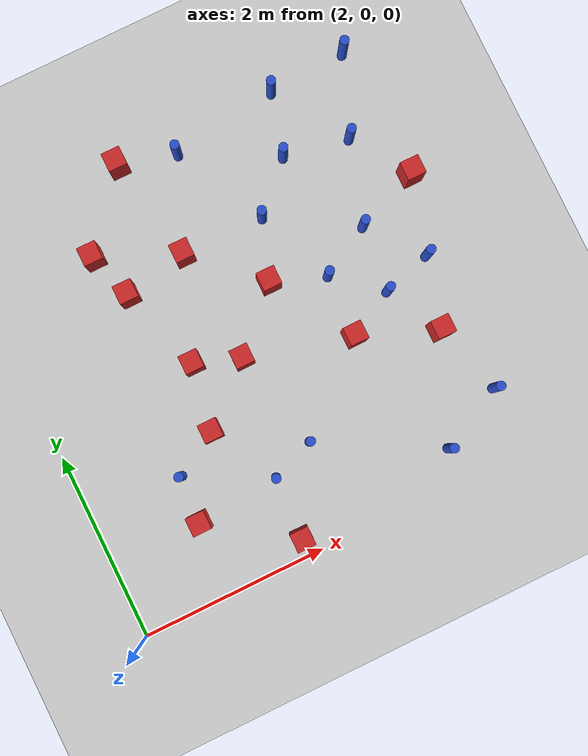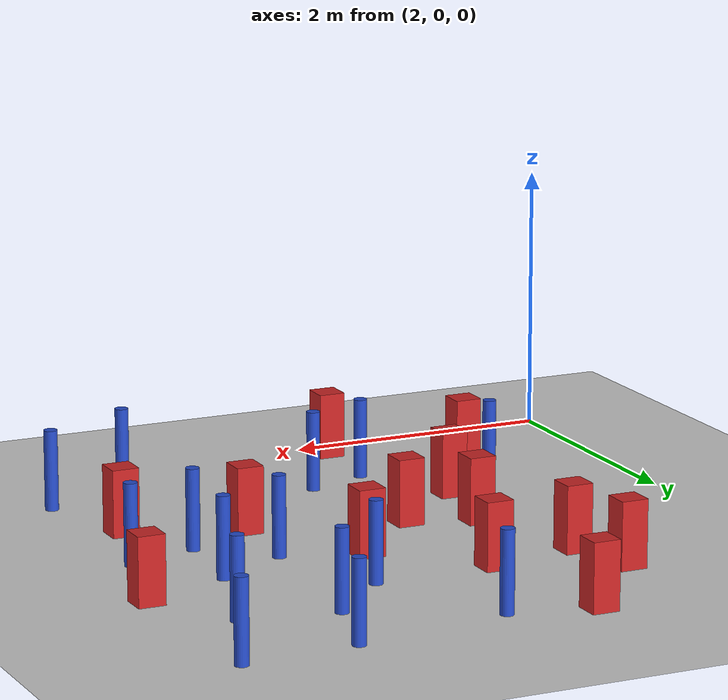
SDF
<sdf version="1.6">
 <world name="default">
  <model name="ground_plane">
   <static>1</static>
   <link name="link">
    <collision name="collision">
     <geometry><plane><normal>0 0 1</normal><size>100 100</size></plane></geometry>
     <surface><friction><ode><mu>100</mu><mu2>50</mu2></ode></friction></surface>
    </collision>
    <visual name="visual">
     <cast_shadows>0</cast_shadows>
     <geometry><plane><normal>0 0 1</normal><size>100 100</size></plane></geometry>
     <material>
      <ambient>1.0 1.0 1.0 1.0</ambient>
      <diffuse>0.8 0.8 0.8 1.0</diffuse>
      <specular>0.01 0.01 0.01 1.000000</specular>
     </material>
    </visual>
   </link>
  </model>
  <model name="square_post_obstacle15">
   <static>true</static>
   <pose>5.23388561417 1.81735451772 1.91545236811e-07 -7.35059704564e-06 1.12565212e-07 2.39332434364e-05</pose>
   <link name="link">
    <pose>0 0 0.25 0 -0 0</pose>
    <inertial>
     <mass>100</mass>
     <inertia>
      <ixx>0.166667</ixx>
      <ixy>0</ixy>
      <ixz>0</ixz>
      <iyy>0.166667</iyy>
      <iyz>0</iyz>
      <izz>0.166667</izz>
     </inertia>
    </inertial>
    <collision name="collision"><geometry><box><size>.2 .2 .5</size></box></geometry></collision>
    <visual name="visual">
     <geometry><box><size>.2 .2 .5</size></box></geometry>
     <material>
      <script><name>Gazebo/Red</name><uri>file://media/materials/scripts/gazebo.material</uri></script>
     </material>
    </visual>
   </link>
  </model>
  <model name="square_post_obstacle16">
   <static>true</static>
   <pose>3.6259601431 2.28239656154 1.91545236811e-07 -7.35059704564e-06 1.12565212e-07 2.39332434364e-05</pose>
   <link name="link">
    <pose>0 0 0.25 0 -0 0</pose>
    <inertial>
     <mass>100</mass>
     <inertia>
      <ixx>0.166667</ixx>
      <ixy>0</ixy>
      <ixz>0</ixz>
      <iyy>0.166667</iyy>
      <iyz>0</iyz>
      <izz>0.166667</izz>
     </inertia>
    </inertial>
    <collision name="collision"><geometry><box><size>.2 .2 .5</size></box></geometry></collision>
    <visual name="visual">
     <geometry><box><size>.2 .2 .5</size></box></geometry>
     <material>
      <script><name>Gazebo/Red</name><uri>file://media/materials/scripts/gazebo.material</uri></script>
     </material>
    </visual>
   </link>
  </model>
  <model name="square_post_obstacle24">
   <static>true</static>
   <pose>3.81590200415 4.46829043997 1.91545236811e-07 -7.35059704564e-06 1.12565212e-07 2.39332434364e-05</pose>
   <link name="link">
    <pose>0 0 0.25 0 -0 0</pose>
    <inertial>
     <mass>100</mass>
     <inertia>
      <ixx>0.166667</ixx>
      <ixy>0</ixy>
      <ixz>0</ixz>
      <iyy>0.166667</iyy>
      <iyz>0</iyz>
      <izz>0.166667</izz>
     </inertia>
    </inertial>
    <collision name="collision"><geometry><box><size>.2 .2 .5</size></box></geometry></collision>
    <visual name="visual">
     <geometry><box><size>.2 .2 .5</size></box></geometry>
     <material>
      <script><name>Gazebo/Red</name><uri>file://media/materials/scripts/gazebo.material</uri></script>
     </material>
    </visual>
   </link>
  </model>
  <model name="pole_obstacle20">
   <static>true</static>
   <pose>6.43205474753 4.52265151657 7.38925637345e-09 -8.47170692796e-08 1.24976764786e-08 -1.74513093032e-07</pose>
   <link name="link">
    <pose>0 0 0.3 0 -0 0</pose>
    <inertial>
     <mass>1</mass>
     <inertia><ixx>0.145833</ixx><ixy>0</ixy><ixz>0</ixz><iyy>0.145833</iyy><iyz>0</iyz><izz>0.125</izz></inertia>
    </inertial>
    <collision name="collision">
     <geometry><cylinder><radius>0.05</radius><length>.6</length></cylinder></geometry>
    </collision>
    <visual name="visual">
     <geometry><cylinder><radius>0.05</radius><length>.6</length></cylinder></geometry>
     <material>
      <script><name>Gazebo/Blue</name><uri>file://media/materials/scripts/gazebo.material</uri></script>
     </material>
    </visual>
   </link>
  </model>
  <model name="pole_obstacle28">
   <static>true</static>
   <pose>5.59675681962 0.361284577051 7.38925637345e-09 -8.47170692798e-08 1.24976765003e-08 -1.7451309302e-07</pose>
   <link name="link">
    <pose>0 0 0.3 0 -0 0</pose>
    <inertial>
     <mass>1</mass>
     <inertia><ixx>0.145833</ixx><ixy>0</ixy><ixz>0</ixz><iyy>0.145833</iyy><iyz>0</iyz><izz>0.125</izz></inertia>
    </inertial>
    <collision name="collision">
     <geometry><cylinder><radius>0.05</radius><length>.6</length></cylinder></geometry>
    </collision>
    <visual name="visual">
     <geometry><cylinder><radius>0.05</radius><length>.6</length></cylinder></geometry>
     <material>
      <script><name>Gazebo/Blue</name><uri>file://media/materials/scripts/gazebo.material</uri></script>
     </material>
    </visual>
   </link>
  </model>
  <model name="square_post_obstacle41">
   <static>true</static>
   <pose>3.18091026252 3.70821379578 1.91545236811e-07 -7.35059704564e-06 1.12565212e-07 2.39332434364e-05</pose>
   <link name="link">
    <pose>0 0 0.25 0 -0 0</pose>
    <inertial>
     <mass>100</mass>
     <inertia>
      <ixx>0.166667</ixx>
      <ixy>0</ixy>
      <ixz>0</ixz>
      <iyy>0.166667</iyy>
      <iyz>0</iyz>
      <izz>0.166667</izz>
     </inertia>
    </inertial>
    <collision name="collision"><geometry><box><size>.2 .2 .5</size></box></geometry></collision>
    <visual name="visual">
     <geometry><box><size>.2 .2 .5</size></box></geometry>
     <material>
      <script><name>Gazebo/Red</name><uri>file://media/materials/scripts/gazebo.material</uri></script>
     </material>
    </visual>
   </link>
  </model>
  <model name="square_post_obstacle54">
   <static>true</static>
   <pose>4.02570083904 3.33463986066 1.91545236811e-07 -7.35059704564e-06 1.12565212e-07 2.39332434364e-05</pose>
   <link name="link">
    <pose>0 0 0.25 0 -0 0</pose>
    <inertial>
     <mass>100</mass>
     <inertia>
      <ixx>0.166667</ixx>
      <ixy>0</ixy>
      <ixz>0</ixz>
      <iyy>0.166667</iyy>
      <iyz>0</iyz>
      <izz>0.166667</izz>
     </inertia>
    </inertial>
    <collision name="collision"><geometry><box><size>.2 .2 .5</size></box></geometry></collision>
    <visual name="visual">
     <geometry><box><size>.2 .2 .5</size></box></geometry>
     <material>
      <script><name>Gazebo/Red</name><uri>file://media/materials/scripts/gazebo.material</uri></script>
     </material>
    </visual>
   </link>
  </model>
  <model name="square_post_obstacle67">
   <static>true</static>
   <pose>3.49952162425 1.57807710977 1.91545236811e-07 -7.35059704564e-06 1.12565212e-07 2.39332434364e-05</pose>
   <link name="link">
    <pose>0 0 0.25 0 -0 0</pose>
    <inertial>
     <mass>100</mass>
     <inertia>
      <ixx>0.166667</ixx>
      <ixy>0</ixy>
      <ixz>0</ixz>
      <iyy>0.166667</iyy>
      <iyz>0</iyz>
      <izz>0.166667</izz>
     </inertia>
    </inertial>
    <collision name="collision"><geometry><box><size>.2 .2 .5</size></box></geometry></collision>
    <visual name="visual">
     <geometry><box><size>.2 .2 .5</size></box></geometry>
     <material>
      <script><name>Gazebo/Red</name><uri>file://media/materials/scripts/gazebo.material</uri></script>
     </material>
    </visual>
   </link>
  </model>
  <model name="pole_obstacle68">
   <static>true</static>
   <pose>5.26768829047 2.48680437826 7.38925637345e-09 -8.47170692798e-08 1.24976764937e-08 -1.74513093023e-07</pose>
   <link name="link">
    <pose>0 0 0.3 0 -0 0</pose>
    <inertial>
     <mass>1</mass>
     <inertia><ixx>0.145833</ixx><ixy>0</ixy><ixz>0</ixz><iyy>0.145833</iyy><iyz>0</iyz><izz>0.125</izz></inertia>
    </inertial>
    <collision name="collision">
     <geometry><cylinder><radius>0.05</radius><length>.6</length></cylinder></geometry>
    </collision>
    <visual name="visual">
     <geometry><cylinder><radius>0.05</radius><length>.6</length></cylinder></geometry>
     <material>
      <script><name>Gazebo/Blue</name><uri>file://media/materials/scripts/gazebo.material</uri></script>
     </material>
    </visual>
   </link>
  </model>
  <model name="pole_obstacle71">
   <static>true</static>
   <pose>4.3512231206 1.04355273768 7.38925637345e-09 -8.47170692801e-08 1.24976765139e-08 -1.74513093014e-07</pose>
   <link name="link">
    <pose>0 0 0.3 0 -0 0</pose>
    <inertial>
     <mass>1</mass>
     <inertia><ixx>0.145833</ixx><ixy>0</ixy><ixz>0</ixz><iyy>0.145833</iyy><iyz>0</iyz><izz>0.125</izz></inertia>
    </inertial>
    <collision name="collision">
     <geometry><cylinder><radius>0.05</radius><length>.6</length></cylinder></geometry>
    </collision>
    <visual name="visual">
     <geometry><cylinder><radius>0.05</radius><length>.6</length></cylinder></geometry>
     <material>
      <script><name>Gazebo/Blue</name><uri>file://media/materials/scripts/gazebo.material</uri></script>
     </material>
    </visual>
   </link>
  </model>
  <model name="pole_obstacle75">
   <static>true</static>
   <pose>3.02442306669 1.29899592093 7.38925637345e-09 -8.471706928e-08 1.24976765152e-08 -1.74513093012e-07</pose>
   <link name="link">
    <pose>0 0 0.3 0 -0 0</pose>
    <inertial>
     <mass>1</mass>
     <inertia><ixx>0.145833</ixx><ixy>0</ixy><ixz>0</ixz><iyy>0.145833</iyy><iyz>0</iyz><izz>0.125</izz></inertia>
    </inertial>
    <collision name="collision">
     <geometry><cylinder><radius>0.05</radius><length>.6</length></cylinder></geometry>
    </collision>
    <visual name="visual">
     <geometry><cylinder><radius>0.05</radius><length>.6</length></cylinder></geometry>
     <material>
      <script><name>Gazebo/Blue</name><uri>file://media/materials/scripts/gazebo.material</uri></script>
     </material>
    </visual>
   </link>
  </model>
  <model name="pole_obstacle77">
   <static>true</static>
   <pose>4.4259155013 4.30985331413 7.38925637345e-09 -8.47170692796e-08 1.24976764786e-08 -1.74513093032e-07</pose>
   <link name="link">
    <pose>0 0 0.3 0 -0 0</pose>
    <inertial>
     <mass>1</mass>
     <inertia><ixx>0.145833</ixx><ixy>0</ixy><ixz>0</ixz><iyy>0.145833</iyy><iyz>0</iyz><izz>0.125</izz></inertia>
    </inertial>
    <collision name="collision">
     <geometry><cylinder><radius>0.05</radius><length>.6</length></cylinder></geometry>
    </collision>
    <visual name="visual">
     <geometry><cylinder><radius>0.05</radius><length>.6</length></cylinder></geometry>
     <material>
      <script><name>Gazebo/Blue</name><uri>file://media/materials/scripts/gazebo.material</uri></script>
     </material>
    </visual>
   </link>
  </model>
  <model name="pole_obstacle86">
   <static>true</static>
   <pose>6.28628153784 0.711278214851 7.38925637345e-09 -8.47170692799e-08 1.24976765038e-08 -1.74513093018e-07</pose>
   <link name="link">
    <pose>0 0 0.3 0 -0 0</pose>
    <inertial>
     <mass>1</mass>
     <inertia><ixx>0.145833</ixx><ixy>0</ixy><ixz>0</ixz><iyy>0.145833</iyy><iyz>0</iyz><izz>0.125</izz></inertia>
    </inertial>
    <collision name="collision">
     <geometry><cylinder><radius>0.05</radius><length>.6</length></cylinder></geometry>
    </collision>
    <visual name="visual">
     <geometry><cylinder><radius>0.05</radius><length>.6</length></cylinder></geometry>
     <material>
      <script><name>Gazebo/Blue</name><uri>file://media/materials/scripts/gazebo.material</uri></script>
     </material>
    </visual>
   </link>
  </model>
  <model name="square_post_obstacle88">
   <static>true</static>
   <pose>4.69300671178 2.69430356194 1.91545236811e-07 -7.35059704564e-06 1.12565212e-07 2.39332434364e-05</pose>
   <link name="link">
    <pose>0 0 0.25 0 -0 0</pose>
    <inertial>
     <mass>100</mass>
     <inertia>
      <ixx>0.166667</ixx>
      <ixy>0</ixy>
      <ixz>0</ixz>
      <iyy>0.166667</iyy>
      <iyz>0</iyz>
      <izz>0.166667</izz>
     </inertia>
    </inertial>
    <collision name="collision"><geometry><box><size>.2 .2 .5</size></box></geometry></collision>
    <visual name="visual">
     <geometry><box><size>.2 .2 .5</size></box></geometry>
     <material>
      <script><name>Gazebo/Red</name><uri>file://media/materials/scripts/gazebo.material</uri></script>
     </material>
    </visual>
   </link>
  </model>
  <model name="square_post_obstacle98">
   <static>true</static>
   <pose>2.99286861903 0.799404648169 1.91545236811e-07 -7.35059704564e-06 1.12565212e-07 2.39332434364e-05</pose>
   <link name="link">
    <pose>0 0 0.25 0 -0 0</pose>
    <inertial>
     <mass>100</mass>
     <inertia>
      <ixx>0.166667</ixx>
      <ixy>0</ixy>
      <ixz>0</ixz>
      <iyy>0.166667</iyy>
      <iyz>0</iyz>
      <izz>0.166667</izz>
     </inertia>
    </inertial>
    <collision name="collision"><geometry><box><size>.2 .2 .5</size></box></geometry></collision>
    <visual name="visual">
     <geometry><box><size>.2 .2 .5</size></box></geometry>
     <material>
      <script><name>Gazebo/Red</name><uri>file://media/materials/scripts/gazebo.material</uri></script>
     </material>
    </visual>
   </link>
  </model>
  <model name="pole_obstacle113">
   <static>true</static>
   <pose>4.92219928807 3.32930231046 7.38925637345e-09 -8.47170692798e-08 1.24976764937e-08 -1.74513093023e-07</pose>
   <link name="link">
    <pose>0 0 0.3 0 -0 0</pose>
    <inertial>
     <mass>1</mass>
     <inertia><ixx>0.145833</ixx><ixy>0</ixy><ixz>0</ixz><iyy>0.145833</iyy><iyz>0</iyz><izz>0.125</izz></inertia>
    </inertial>
    <collision name="collision">
     <geometry><cylinder><radius>0.05</radius><length>.6</length></cylinder></geometry>
    </collision>
    <visual name="visual">
     <geometry><cylinder><radius>0.05</radius><length>.6</length></cylinder></geometry>
     <material>
      <script><name>Gazebo/Blue</name><uri>file://media/materials/scripts/gazebo.material</uri></script>
     </material>
    </visual>
   </link>
  </model>
  <model name="pole_obstacle124">
   <static>true</static>
   <pose>5.81735203296 2.79168746584 7.38925637345e-09 -8.47170692798e-08 1.24976764937e-08 -1.74513093023e-07</pose>
   <link name="link">
    <pose>0 0 0.3 0 -0 0</pose>
    <inertial>
     <mass>1</mass>
     <inertia><ixx>0.145833</ixx><ixy>0</ixy><ixz>0</ixz><iyy>0.145833</iyy><iyz>0</iyz><izz>0.125</izz></inertia>
    </inertial>
    <collision name="collision">
     <geometry><cylinder><radius>0.05</radius><length>.6</length></cylinder></geometry>
    </collision>
    <visual name="visual">
     <geometry><cylinder><radius>0.05</radius><length>.6</length></cylinder></geometry>
     <material>
      <script><name>Gazebo/Blue</name><uri>file://media/materials/scripts/gazebo.material</uri></script>
     </material>
    </visual>
   </link>
  </model>
  <model name="pole_obstacle138">
   <static>true</static>
   <pose>5.74533794981 2.07780654135 7.38925637345e-09 -8.47170692798e-08 1.24976764937e-08 -1.74513093023e-07</pose>
   <link name="link">
    <pose>0 0 0.3 0 -0 0</pose>
    <inertial>
     <mass>1</mass>
     <inertia><ixx>0.145833</ixx><ixy>0</ixy><ixz>0</ixz><iyy>0.145833</iyy><iyz>0</iyz><izz>0.125</izz></inertia>
    </inertial>
    <collision name="collision">
     <geometry><cylinder><radius>0.05</radius><length>.6</length></cylinder></geometry>
    </collision>
    <visual name="visual">
     <geometry><cylinder><radius>0.05</radius><length>.6</length></cylinder></geometry>
     <material>
      <script><name>Gazebo/Blue</name><uri>file://media/materials/scripts/gazebo.material</uri></script>
     </material>
    </visual>
   </link>
  </model>
  <model name="square_post_obstacle131">
   <static>true</static>
   <pose>3.85552608297 0.204361449174 1.91545236811e-07 -7.35059704564e-06 1.12565212e-07 2.39332434364e-05</pose>
   <link name="link">
    <pose>0 0 0.25 0 -0 0</pose>
    <inertial>
     <mass>100</mass>
     <inertia>
      <ixx>0.166667</ixx>
      <ixy>0</ixy>
      <ixz>0</ixz>
      <iyy>0.166667</iyy>
      <iyz>0</iyz>
      <izz>0.166667</izz>
     </inertia>
    </inertial>
    <collision name="collision"><geometry><box><size>.2 .2 .5</size></box></geometry></collision>
    <visual name="visual">
     <geometry><box><size>.2 .2 .5</size></box></geometry>
     <material>
      <script><name>Gazebo/Red</name><uri>file://media/materials/scripts/gazebo.material</uri></script>
     </material>
    </visual>
   </link>
  </model>
  <model name="square_post_obstacle136">
   <static>true</static>
   <pose>3.33685984966 3.20407677356 1.91545236811e-07 -7.35059704564e-06 1.12565212e-07 2.39332434364e-05</pose>
   <link name="link">
    <pose>0 0 0.25 0 -0 0</pose>
    <inertial>
     <mass>100</mass>
     <inertia>
      <ixx>0.166667</ixx>
      <ixy>0</ixy>
      <ixz>0</ixz>
      <iyy>0.166667</iyy>
      <iyz>0</iyz>
      <izz>0.166667</izz>
     </inertia>
    </inertial>
    <collision name="collision"><geometry><box><size>.2 .2 .5</size></box></geometry></collision>
    <visual name="visual">
     <geometry><box><size>.2 .2 .5</size></box></geometry>
     <material>
      <script><name>Gazebo/Red</name><uri>file://media/materials/scripts/gazebo.material</uri></script>
     </material>
    </visual>
   </link>
  </model>
  <model name="pole_obstacle151">
   <static>true</static>
   <pose>3.88395757574 0.864891867727 7.38925637345e-09 -8.471706928e-08 1.24976765177e-08 -1.74513093012e-07</pose>
   <link name="link">
    <pose>0 0 0.3 0 -0 0</pose>
    <inertial>
     <mass>1</mass>
     <inertia><ixx>0.145833</ixx><ixy>0</ixy><ixz>0</ixz><iyy>0.145833</iyy><iyz>0</iyz><izz>0.125</izz></inertia>
    </inertial>
    <collision name="collision">
     <geometry><cylinder><radius>0.05</radius><length>.6</length></cylinder></geometry>
    </collision>
    <visual name="visual">
     <geometry><cylinder><radius>0.05</radius><length>.6</length></cylinder></geometry>
     <material>
      <script><name>Gazebo/Blue</name><uri>file://media/materials/scripts/gazebo.material</uri></script>
     </material>
    </visual>
   </link>
  </model>
  <model name="pole_obstacle152">
   <static>true</static>
   <pose>5.58430286757 4.47500727149 7.38925637345e-09 -8.47170692796e-08 1.24976764786e-08 -1.74513093032e-07</pose>
   <link name="link">
    <pose>0 0 0.3 0 -0 0</pose>
    <inertial>
     <mass>1</mass>
     <inertia><ixx>0.145833</ixx><ixy>0</ixy><ixz>0</ixz><iyy>0.145833</iyy><iyz>0</iyz><izz>0.125</izz></inertia>
    </inertial>
    <collision name="collision">
     <geometry><cylinder><radius>0.05</radius><length>.6</length></cylinder></geometry>
    </collision>
    <visual name="visual">
     <geometry><cylinder><radius>0.05</radius><length>.6</length></cylinder></geometry>
     <material>
      <script><name>Gazebo/Blue</name><uri>file://media/materials/scripts/gazebo.material</uri></script>
     </material>
    </visual>
   </link>
  </model>
  <model name="square_post_obstacle145">
   <static>true</static>
   <pose>4.1063261196 2.11081799894 1.91545236811e-07 -7.35059704564e-06 1.12565212e-07 2.39332434364e-05</pose>
   <link name="link">
    <pose>0 0 0.25 0 -0 0</pose>
    <inertial>
     <mass>100</mass>
     <inertia>
      <ixx>0.166667</ixx>
      <ixy>0</ixy>
      <ixz>0</ixz>
      <iyy>0.166667</iyy>
      <iyz>0</iyz>
      <izz>0.166667</izz>
     </inertia>
    </inertial>
    <collision name="collision"><geometry><box><size>.2 .2 .5</size></box></geometry></collision>
    <visual name="visual">
     <geometry><box><size>.2 .2 .5</size></box></geometry>
     <material>
      <script><name>Gazebo/Red</name><uri>file://media/materials/scripts/gazebo.material</uri></script>
     </material>
    </visual>
   </link>
  </model>
  <model name="pole_obstacle172">
   <static>true</static>
   <pose>6.27324655634 2.23514665158 7.38925637345e-09 -8.47170692798e-08 1.24976764937e-08 -1.74513093023e-07</pose>
   <link name="link">
    <pose>0 0 0.3 0 -0 0</pose>
    <inertial>
     <mass>1</mass>
     <inertia><ixx>0.145833</ixx><ixy>0</ixy><ixz>0</ixz><iyy>0.145833</iyy><iyz>0</iyz><izz>0.125</izz></inertia>
    </inertial>
    <collision name="collision">
     <geometry><cylinder><radius>0.05</radius><length>.6</length></cylinder></geometry>
    </collision>
    <visual name="visual">
     <geometry><cylinder><radius>0.05</radius><length>.6</length></cylinder></geometry>
     <material>
      <script><name>Gazebo/Blue</name><uri>file://media/materials/scripts/gazebo.material</uri></script>
     </material>
    </visual>
   </link>
  </model>
  <model name="square_post_obstacle167">
   <static>true</static>
   <pose>6.05327531862 1.49304304395 1.91545236811e-07 -7.35059704564e-06 1.12565212e-07 2.39332434364e-05</pose>
   <link name="link">
    <pose>0 0 0.25 0 -0 0</pose>
    <inertial>
     <mass>100</mass>
     <inertia>
      <ixx>0.166667</ixx>
      <ixy>0</ixy>
      <ixz>0</ixz>
      <iyy>0.166667</iyy>
      <iyz>0</iyz>
      <izz>0.166667</izz>
     </inertia>
    </inertial>
    <collision name="collision"><geometry><box><size>.2 .2 .5</size></box></geometry></collision>
    <visual name="visual">
     <geometry><box><size>.2 .2 .5</size></box></geometry>
     <material>
      <script><name>Gazebo/Red</name><uri>file://media/materials/scripts/gazebo.material</uri></script>
     </material>
    </visual>
   </link>
  </model>
  <model name="square_post_obstacle192">
   <static>true</static>
   <pose>6.49397738244 3.06776795843 1.91545236811e-07 -7.35059704564e-06 1.12565212e-07 2.39332434364e-05</pose>
   <link name="link">
    <pose>0 0 0.25 0 -0 0</pose>
    <inertial>
     <mass>100</mass>
     <inertia>
      <ixx>0.166667</ixx>
      <ixy>0</ixy>
      <ixz>0</ixz>
      <iyy>0.166667</iyy>
      <iyz>0</iyz>
      <izz>0.166667</izz>
     </inertia>
    </inertial>
    <collision name="collision"><geometry><box><size>.2 .2 .5</size></box></geometry></collision>
    <visual name="visual">
     <geometry><box><size>.2 .2 .5</size></box></geometry>
     <material>
      <script><name>Gazebo/Red</name><uri>file://media/materials/scripts/gazebo.material</uri></script>
     </material>
    </visual>
   </link>
  </model>
  <model name="pole_obstacle200">
   <static>true</static>
   <pose>5.39692001395 3.80811824407 7.38925637345e-09 -8.47170692798e-08 1.24976764937e-08 -1.74513093023e-07</pose>
   <link name="link">
    <pose>0 0 0.3 0 -0 0</pose>
    <inertial>
     <mass>1</mass>
     <inertia><ixx>0.145833</ixx><ixy>0</ixy><ixz>0</ixz><iyy>0.145833</iyy><iyz>0</iyz><izz>0.125</izz></inertia>
    </inertial>
    <collision name="collision">
     <geometry><cylinder><radius>0.05</radius><length>.6</length></cylinder></geometry>
    </collision>
    <visual name="visual">
     <geometry><cylinder><radius>0.05</radius><length>.6</length></cylinder></geometry>
     <material>
      <script><name>Gazebo/Blue</name><uri>file://media/materials/scripts/gazebo.material</uri></script>
     </material>
    </visual>
   </link>
  </model>
  <model name="pole_obstacle210">
   <static>true</static>
   <pose>6.09864693087 3.68152856805 7.38925637345e-09 -8.47170692798e-08 1.24976764937e-08 -1.74513093023e-07</pose>
   <link name="link">
    <pose>0 0 0.3 0 -0 0</pose>
    <inertial>
     <mass>1</mass>
     <inertia><ixx>0.145833</ixx><ixy>0</ixy><ixz>0</ixz><iyy>0.145833</iyy><iyz>0</iyz><izz>0.125</izz></inertia>
    </inertial>
    <collision name="collision">
     <geometry><cylinder><radius>0.05</radius><length>.6</length></cylinder></geometry>
    </collision>
    <visual name="visual">
     <geometry><cylinder><radius>0.05</radius><length>.6</length></cylinder></geometry>
     <material>
      <script><name>Gazebo/Blue</name><uri>file://media/materials/scripts/gazebo.material</uri></script>
     </material>
    </visual>
   </link>
  </model>
 </world>
</sdf>
